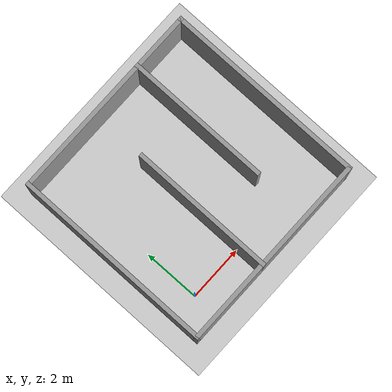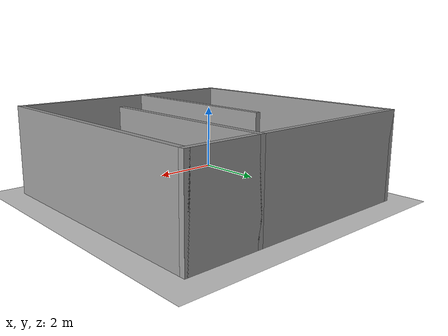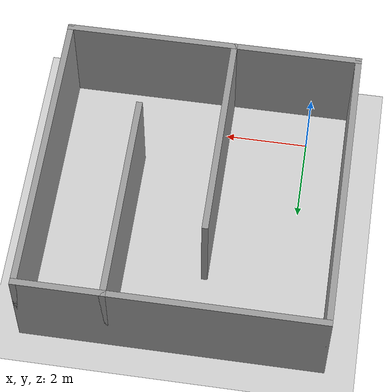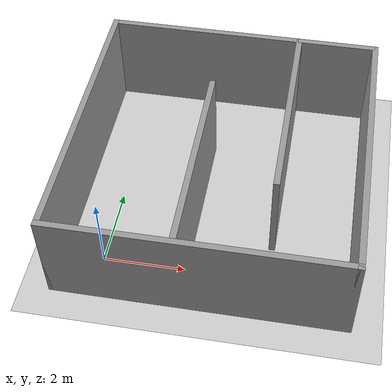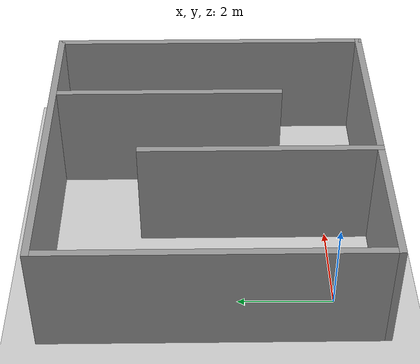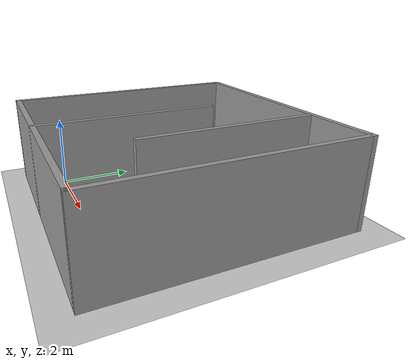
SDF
<?xml version="1.0"?>
<sdf version="1.6">
  <world name="default">

    <include>
      <uri>model://ground_plane</uri>
    </include>

    <include>
      <uri>model://sun</uri>
    </include>

    <scene>
      <shadows>false</shadows>
    </scene>

    <gui fullscreen='0'>
      <camera name='user_camera'>
        <pose frame=''>0.319654 -0.235002 9.29441 0 1.5138 0.009599</pose>
        <view_controller>orbit</view_controller>
        <projection_type>perspective</projection_type>
      </camera>
    </gui>

    <physics type="ode">
      <real_time_update_rate>1000.0</real_time_update_rate>
      <max_step_size>0.001</max_step_size>
      <real_time_factor>1</real_time_factor>
      <ode>
        <solver>
          <type>quick</type>
          <iters>150</iters>
          <precon_iters>0</precon_iters>
          <sor>1.400000</sor>
          <use_dynamic_moi_rescaling>1</use_dynamic_moi_rescaling>
        </solver>
        <constraints>
          <cfm>0.00001</cfm>
          <erp>0.2</erp>
          <contact_max_correcting_vel>2000.000000</contact_max_correcting_vel>
          <contact_surface_layer>0.01000</contact_surface_layer>
        </constraints>
      </ode>
    </physics>

    <model name='pr.world'>
    <pose>2.5 2.5 0 0 -0 0</pose>
    <link name='Wall_0'>
      <collision name='Wall_0_Collision'>
        <geometry>
          <box>
            <size>7.15 0.15 2.5</size>
          </box>
        </geometry>
        <pose>0 0 1.25 0 -0 0</pose>
      </collision>
      <visual name='Wall_0_Visual'>
        <pose>0 0 1.25 0 -0 0</pose>
        <geometry>
          <box>
            <size>7.15 0.15 2.5</size>
          </box>
        </geometry>
        <material>
          <script>
            <uri>file://media/materials/scripts/gazebo.material</uri>
            <name>Gazebo/Grey</name>
          </script>
          <ambient>1 1 1 1</ambient>
        </material>
        <meta>
          <layer>0</layer>
        </meta>
      </visual>
      <pose>0 -3.5 0 0 -0 0</pose>
    </link>
    <link name='Wall_10'>
      <collision name='Wall_10_Collision'>
        <geometry>
          <box>
            <size>5.15 0.15 2.5</size>
          </box>
        </geometry>
        <pose>0 0 1.25 0 -0 0</pose>
      </collision>
      <visual name='Wall_10_Visual'>
        <pose>0 0 1.25 0 -0 0</pose>
        <geometry>
          <box>
            <size>5.15 0.15 2.5</size>
          </box>
        </geometry>
        <material>
          <script>
            <uri>file://media/materials/scripts/gazebo.material</uri>
            <name>Gazebo/Grey</name>
          </script>
          <ambient>1 1 1 1</ambient>
        </material>
        <meta>
          <layer>0</layer>
        </meta>
      </visual>
      <pose>1.5 1 0 0 -0 -1.5708</pose>
    </link>
    <link name='Wall_2'>
      <collision name='Wall_2_Collision'>
        <geometry>
          <box>
            <size>7.15 0.15 2.5</size>
          </box>
        </geometry>
        <pose>0 0 1.25 0 -0 0</pose>
      </collision>
      <visual name='Wall_2_Visual'>
        <pose>0 0 1.25 0 -0 0</pose>
        <geometry>
          <box>
            <size>7.15 0.15 2.5</size>
          </box>
        </geometry>
        <material>
          <script>
            <uri>file://media/materials/scripts/gazebo.material</uri>
            <name>Gazebo/Grey</name>
          </script>
          <ambient>1 1 1 1</ambient>
        </material>
        <meta>
          <layer>0</layer>
        </meta>
      </visual>
      <pose>-3.5 -0 0 0 -0 1.5708</pose>
    </link>
    <link name='Wall_4'>
      <collision name='Wall_4_Collision'>
        <geometry>
          <box>
            <size>7.15 0.15 2.5</size>
          </box>
        </geometry>
        <pose>0 0 1.25 0 -0 0</pose>
      </collision>
      <visual name='Wall_4_Visual'>
        <pose>0 0 1.25 0 -0 0</pose>
        <geometry>
          <box>
            <size>7.15 0.15 2.5</size>
          </box>
        </geometry>
        <material>
          <script>
            <uri>file://media/materials/scripts/gazebo.material</uri>
            <name>Gazebo/Grey</name>
          </script>
          <ambient>1 1 1 1</ambient>
        </material>
        <meta>
          <layer>0</layer>
        </meta>
      </visual>
      <pose>0 3.5 0 0 -0 0</pose>
    </link>
    <link name='Wall_6'>
      <collision name='Wall_6_Collision'>
        <geometry>
          <box>
            <size>7.15 0.15 2.5</size>
          </box>
        </geometry>
        <pose>0 0 1.25 0 -0 0</pose>
      </collision>
      <visual name='Wall_6_Visual'>
        <pose>0 0 1.25 0 -0 0</pose>
        <geometry>
          <box>
            <size>7.15 0.15 2.5</size>
          </box>
        </geometry>
        <material>
          <script>
            <uri>file://media/materials/scripts/gazebo.material</uri>
            <name>Gazebo/Grey</name>
          </script>
          <ambient>1 1 1 1</ambient>
        </material>
        <meta>
          <layer>0</layer>
        </meta>
      </visual>
      <pose>3.5 -0 0 0 -0 1.5708</pose>
    </link>
    <link name='Wall_8'>
      <collision name='Wall_8_Collision'>
        <geometry>
          <box>
            <size>5.15 0.15 2.5</size>
          </box>
        </geometry>
        <pose>0 0 1.25 0 -0 0</pose>
      </collision>
      <visual name='Wall_8_Visual'>
        <pose>0 0 1.25 0 -0 0</pose>
        <geometry>
          <box>
            <size>5.15 0.15 2.5</size>
          </box>
        </geometry>
        <material>
          <script>
            <uri>file://media/materials/scripts/gazebo.material</uri>
            <name>Gazebo/Grey</name>
          </script>
          <ambient>1 1 1 1</ambient>
        </material>
        <meta>
          <layer>0</layer>
        </meta>
      </visual>
      <pose>-0.5 -1 0 0 -0 1.5708</pose>
    </link>
    <static>1</static>
  </model>

  </world>
</sdf>
